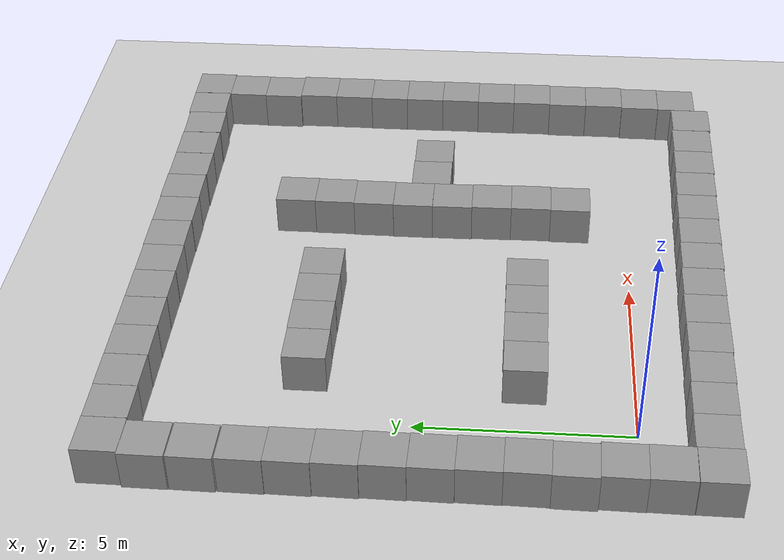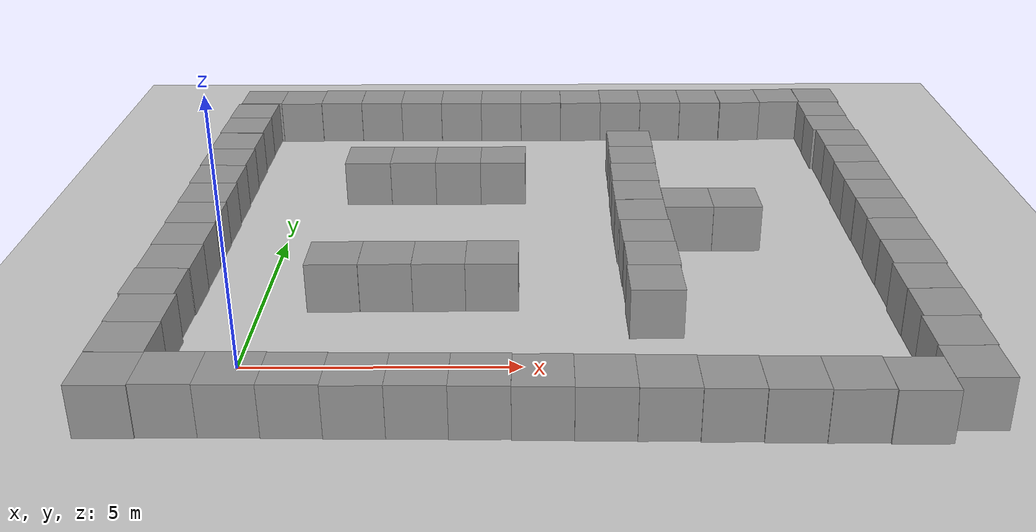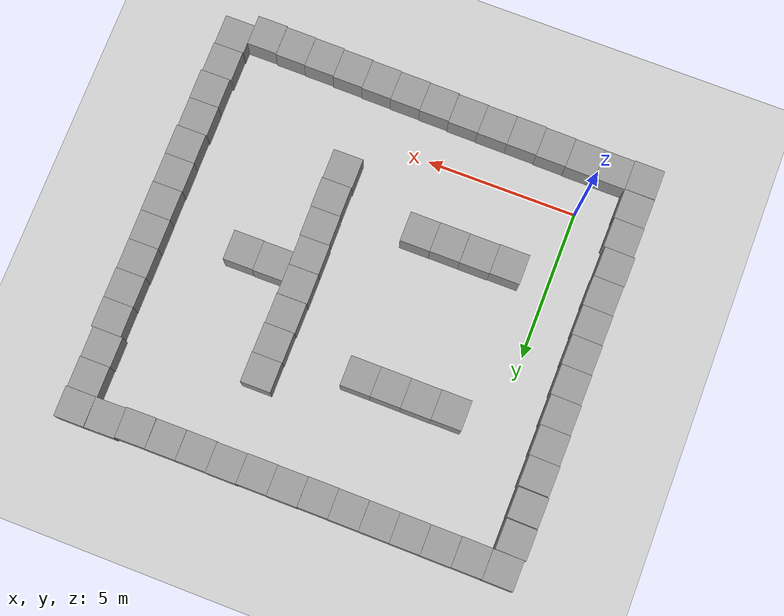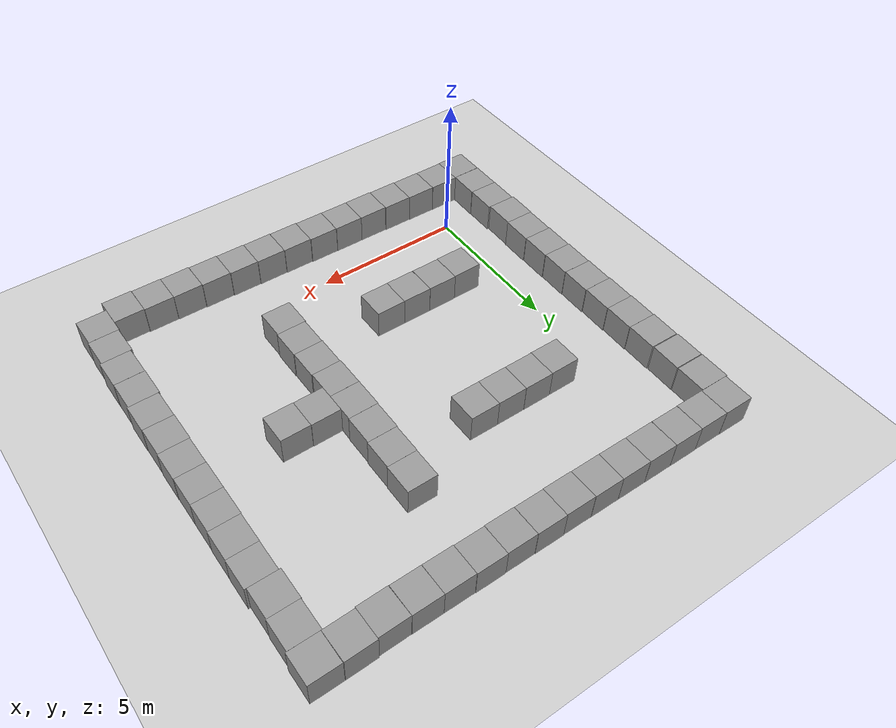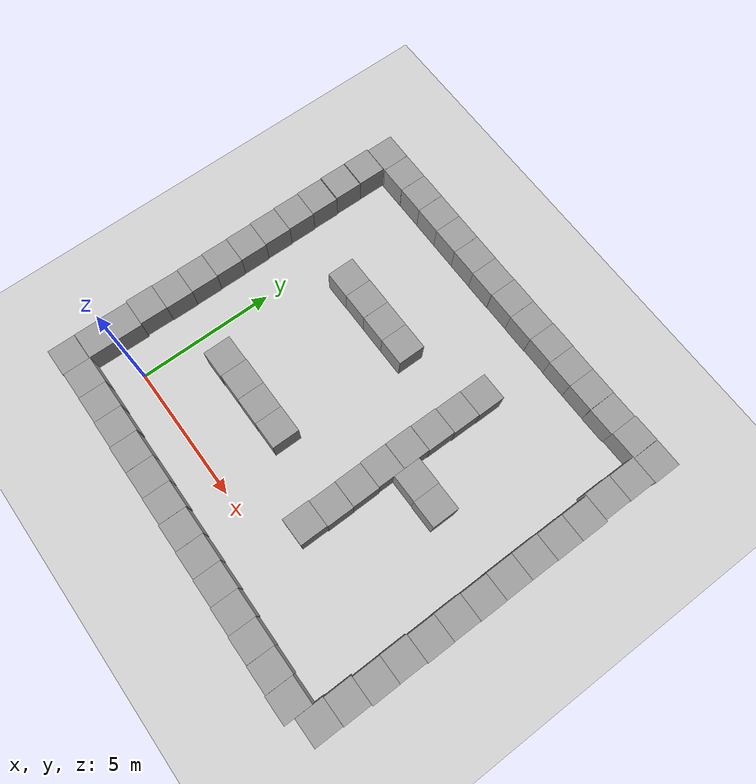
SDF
<sdf version="1.6">
 <world name="default">
  <light name="sun" type="directional">
   <pose>0 0 10 0 -0 0</pose>
   <diffuse>0.8 0.8 0.8 1</diffuse>
   <specular>0.1 0.1 0.1 1</specular>
   <attenuation>
    <range>1000</range>
    <constant>0.9</constant>
    <linear>0.01</linear>
    <quadratic>0.001</quadratic>
   </attenuation>
   <direction>-0.5 0.5 -1</direction>
  </light>
  <model name="ground_plane">
   <static>1</static>
   <link name="link">
    <collision name="collision">
     <geometry><plane><normal>0 0 1</normal><size>100 100</size></plane></geometry>
     <surface><friction><ode><mu>100</mu><mu2>50</mu2></ode></friction></surface>
    </collision>
    <visual name="visual">
     <cast_shadows>0</cast_shadows>
     <geometry><plane><normal>0 0 1</normal><size>100 100</size></plane></geometry>
     <material>
      <script><uri>file://media/materials/scripts/gazebo.material</uri><name>Gazebo/Grey</name></script>
     </material>
    </visual>
   </link>
  </model>
  <gravity>0 0 -9.8</gravity>
  <magnetic_field>6e-06 2.3e-05 -4.2e-05</magnetic_field>
  <atmosphere type="adiabatic"/>
  <physics name="default_physics" default="0" type="ode">
   <max_step_size>0.001</max_step_size>
   <real_time_factor>1</real_time_factor>
   <real_time_update_rate>1000</real_time_update_rate>
  </physics>
  <scene><ambient>0.4 0.4 0.4 1</ambient><background>0.7 0.7 0.7 1</background><shadows>1</shadows></scene>
  <spherical_coordinates>
   <surface_model>EARTH_WGS84</surface_model>
   <latitude_deg>0</latitude_deg>
   <longitude_deg>0</longitude_deg>
   <elevation>0</elevation>
   <heading_deg>0</heading_deg>
  </spherical_coordinates>
  <model name="unit_box_0">
   <pose>-1.68375 -1.59524 0.499995 0 1e-05 -0.007147</pose>
   <link name="link">
    <inertial>
     <mass>1</mass>
     <inertia>
      <ixx>0.166667</ixx>
      <ixy>0</ixy>
      <ixz>0</ixz>
      <iyy>0.166667</iyy>
      <iyz>0</iyz>
      <izz>0.166667</izz>
     </inertia>
    </inertial>
    <collision name="collision"><geometry><box><size>1 1 1</size></box></geometry></collision>
    <visual name="visual">
     <geometry><box><size>1 1 1</size></box></geometry>
     <material>
      <script><name>Gazebo/Grey</name><uri>file://media/materials/scripts/gazebo.material</uri></script>
     </material>
    </visual>
   </link>
  </model>
  <model name="unit_box_1">
   <pose>-1.67736 -0.589115 0.499995 -1e-05 -0 -0.019027</pose>
   <link name="link">
    <inertial>
     <mass>1</mass>
     <inertia>
      <ixx>0.166667</ixx>
      <ixy>0</ixy>
      <ixz>0</ixz>
      <iyy>0.166667</iyy>
      <iyz>0</iyz>
      <izz>0.166667</izz>
     </inertia>
    </inertial>
    <collision name="collision"><geometry><box><size>1 1 1</size></box></geometry></collision>
    <visual name="visual">
     <geometry><box><size>1 1 1</size></box></geometry>
     <material>
      <script><name>Gazebo/Grey</name><uri>file://media/materials/scripts/gazebo.material</uri></script>
     </material>
    </visual>
   </link>
  </model>
  <model name="unit_box_2">
   <pose>-1.67159 0.410975 0.499995 1e-05 -0 -0.019004</pose>
   <link name="link">
    <inertial>
     <mass>1</mass>
     <inertia>
      <ixx>0.166667</ixx>
      <ixy>0</ixy>
      <ixz>0</ixz>
      <iyy>0.166667</iyy>
      <iyz>0</iyz>
      <izz>0.166667</izz>
     </inertia>
    </inertial>
    <collision name="collision"><geometry><box><size>1 1 1</size></box></geometry></collision>
    <visual name="visual">
     <geometry><box><size>1 1 1</size></box></geometry>
     <material>
      <script><name>Gazebo/Grey</name><uri>file://media/materials/scripts/gazebo.material</uri></script>
     </material>
    </visual>
   </link>
  </model>
  <model name="unit_box_3">
   <pose>-1.70645 1.41183 0.499995 0 1e-05 -0.018998</pose>
   <link name="link">
    <inertial>
     <mass>1</mass>
     <inertia>
      <ixx>0.166667</ixx>
      <ixy>0</ixy>
      <ixz>0</ixz>
      <iyy>0.166667</iyy>
      <iyz>0</iyz>
      <izz>0.166667</izz>
     </inertia>
    </inertial>
    <collision name="collision"><geometry><box><size>1 1 1</size></box></geometry></collision>
    <visual name="visual">
     <geometry><box><size>1 1 1</size></box></geometry>
     <material>
      <script><name>Gazebo/Grey</name><uri>file://media/materials/scripts/gazebo.material</uri></script>
     </material>
    </visual>
   </link>
  </model>
  <model name="unit_box_4">
   <pose>-1.67129 2.41135 0.499995 0 -1e-05 -0.018991</pose>
   <link name="link">
    <inertial>
     <mass>1</mass>
     <inertia>
      <ixx>0.166667</ixx>
      <ixy>0</ixy>
      <ixz>0</ixz>
      <iyy>0.166667</iyy>
      <iyz>0</iyz>
      <izz>0.166667</izz>
     </inertia>
    </inertial>
    <collision name="collision"><geometry><box><size>1 1 1</size></box></geometry></collision>
    <visual name="visual">
     <geometry><box><size>1 1 1</size></box></geometry>
     <material>
      <script><name>Gazebo/Grey</name><uri>file://media/materials/scripts/gazebo.material</uri></script>
     </material>
    </visual>
   </link>
  </model>
  <model name="unit_box_5">
   <pose>-1.66735 3.41147 0.5 0 0 -0.018966</pose>
   <link name="link">
    <inertial>
     <mass>1</mass>
     <inertia>
      <ixx>0.166667</ixx>
      <ixy>0</ixy>
      <ixz>0</ixz>
      <iyy>0.166667</iyy>
      <iyz>0</iyz>
      <izz>0.166667</izz>
     </inertia>
    </inertial>
    <collision name="collision"><geometry><box><size>1 1 1</size></box></geometry></collision>
    <visual name="visual">
     <geometry><box><size>1 1 1</size></box></geometry>
     <material>
      <script><name>Gazebo/Grey</name><uri>file://media/materials/scripts/gazebo.material</uri></script>
     </material>
    </visual>
   </link>
  </model>
  <model name="unit_box_6">
   <pose>-1.66822 4.4119 0.499995 0 1e-05 -0.018495</pose>
   <link name="link">
    <inertial>
     <mass>1</mass>
     <inertia>
      <ixx>0.166667</ixx>
      <ixy>0</ixy>
      <ixz>0</ixz>
      <iyy>0.166667</iyy>
      <iyz>0</iyz>
      <izz>0.166667</izz>
     </inertia>
    </inertial>
    <collision name="collision"><geometry><box><size>1 1 1</size></box></geometry></collision>
    <visual name="visual">
     <geometry><box><size>1 1 1</size></box></geometry>
     <material>
      <script><name>Gazebo/Grey</name><uri>file://media/materials/scripts/gazebo.material</uri></script>
     </material>
    </visual>
   </link>
  </model>
  <model name="unit_box_7">
   <pose>-1.6659 5.41211 0.5 0 0 -0.018325</pose>
   <link name="link">
    <inertial>
     <mass>1</mass>
     <inertia>
      <ixx>0.166667</ixx>
      <ixy>0</ixy>
      <ixz>0</ixz>
      <iyy>0.166667</iyy>
      <iyz>0</iyz>
      <izz>0.166667</izz>
     </inertia>
    </inertial>
    <collision name="collision"><geometry><box><size>1 1 1</size></box></geometry></collision>
    <visual name="visual">
     <geometry><box><size>1 1 1</size></box></geometry>
     <material>
      <script><name>Gazebo/Grey</name><uri>file://media/materials/scripts/gazebo.material</uri></script>
     </material>
    </visual>
   </link>
  </model>
  <model name="unit_box_8">
   <pose>-1.67338 6.41265 0.5 0 0 -0.01784</pose>
   <link name="link">
    <inertial>
     <mass>1</mass>
     <inertia>
      <ixx>0.166667</ixx>
      <ixy>0</ixy>
      <ixz>0</ixz>
      <iyy>0.166667</iyy>
      <iyz>0</iyz>
      <izz>0.166667</izz>
     </inertia>
    </inertial>
    <collision name="collision"><geometry><box><size>1 1 1</size></box></geometry></collision>
    <visual name="visual">
     <geometry><box><size>1 1 1</size></box></geometry>
     <material>
      <script><name>Gazebo/Grey</name><uri>file://media/materials/scripts/gazebo.material</uri></script>
     </material>
    </visual>
   </link>
  </model>
  <model name="unit_box_9">
   <pose>-0.683601 -1.58027 0.499995 1e-05 -0 -0.007103</pose>
   <link name="link">
    <inertial>
     <mass>1</mass>
     <inertia>
      <ixx>0.166667</ixx>
      <ixy>0</ixy>
      <ixz>0</ixz>
      <iyy>0.166667</iyy>
      <iyz>0</iyz>
      <izz>0.166667</izz>
     </inertia>
    </inertial>
    <collision name="collision"><geometry><box><size>1 1 1</size></box></geometry></collision>
    <visual name="visual">
     <geometry><box><size>1 1 1</size></box></geometry>
     <material>
      <script><name>Gazebo/Grey</name><uri>file://media/materials/scripts/gazebo.material</uri></script>
     </material>
    </visual>
   </link>
  </model>
  <model name="unit_box_10">
   <pose>0.316469 -1.59661 0.5 0 0 -0.006783</pose>
   <link name="link">
    <inertial>
     <mass>1</mass>
     <inertia>
      <ixx>0.166667</ixx>
      <ixy>0</ixy>
      <ixz>0</ixz>
      <iyy>0.166667</iyy>
      <iyz>0</iyz>
      <izz>0.166667</izz>
     </inertia>
    </inertial>
    <collision name="collision"><geometry><box><size>1 1 1</size></box></geometry></collision>
    <visual name="visual">
     <geometry><box><size>1 1 1</size></box></geometry>
     <material>
      <script><name>Gazebo/Grey</name><uri>file://media/materials/scripts/gazebo.material</uri></script>
     </material>
    </visual>
   </link>
  </model>
  <model name="unit_box_11">
   <pose>1.31637 -1.61834 0.499995 1e-05 -0 -0.006737</pose>
   <link name="link">
    <inertial>
     <mass>1</mass>
     <inertia>
      <ixx>0.166667</ixx>
      <ixy>0</ixy>
      <ixz>0</ixz>
      <iyy>0.166667</iyy>
      <iyz>0</iyz>
      <izz>0.166667</izz>
     </inertia>
    </inertial>
    <collision name="collision"><geometry><box><size>1 1 1</size></box></geometry></collision>
    <visual name="visual">
     <geometry><box><size>1 1 1</size></box></geometry>
     <material>
      <script><name>Gazebo/Grey</name><uri>file://media/materials/scripts/gazebo.material</uri></script>
     </material>
    </visual>
   </link>
  </model>
  <model name="unit_box_12">
   <pose>2.31622 -1.64731 0.499995 1e-05 -0 -0.006688</pose>
   <link name="link">
    <inertial>
     <mass>1</mass>
     <inertia>
      <ixx>0.166667</ixx>
      <ixy>0</ixy>
      <ixz>0</ixz>
      <iyy>0.166667</iyy>
      <iyz>0</iyz>
      <izz>0.166667</izz>
     </inertia>
    </inertial>
    <collision name="collision"><geometry><box><size>1 1 1</size></box></geometry></collision>
    <visual name="visual">
     <geometry><box><size>1 1 1</size></box></geometry>
     <material>
      <script><name>Gazebo/Grey</name><uri>file://media/materials/scripts/gazebo.material</uri></script>
     </material>
    </visual>
   </link>
  </model>
  <model name="unit_box_13">
   <pose>3.31642 -1.65478 0.499995 1e-05 -0 -0.00625</pose>
   <link name="link">
    <inertial>
     <mass>1</mass>
     <inertia>
      <ixx>0.166667</ixx>
      <ixy>0</ixy>
      <ixz>0</ixz>
      <iyy>0.166667</iyy>
      <iyz>0</iyz>
      <izz>0.166667</izz>
     </inertia>
    </inertial>
    <collision name="collision"><geometry><box><size>1 1 1</size></box></geometry></collision>
    <visual name="visual">
     <geometry><box><size>1 1 1</size></box></geometry>
     <material>
      <script><name>Gazebo/Grey</name><uri>file://media/materials/scripts/gazebo.material</uri></script>
     </material>
    </visual>
   </link>
  </model>
  <model name="unit_box_14">
   <pose>4.31643 -1.67336 0.5 0 0 -0.006043</pose>
   <link name="link">
    <inertial>
     <mass>1</mass>
     <inertia>
      <ixx>0.166667</ixx>
      <ixy>0</ixy>
      <ixz>0</ixz>
      <iyy>0.166667</iyy>
      <iyz>0</iyz>
      <izz>0.166667</izz>
     </inertia>
    </inertial>
    <collision name="collision"><geometry><box><size>1 1 1</size></box></geometry></collision>
    <visual name="visual">
     <geometry><box><size>1 1 1</size></box></geometry>
     <material>
      <script><name>Gazebo/Grey</name><uri>file://media/materials/scripts/gazebo.material</uri></script>
     </material>
    </visual>
   </link>
  </model>
  <model name="unit_box_15">
   <pose>5.31675 -1.70642 0.499997 -7e-06 -0 -0.005042</pose>
   <link name="link">
    <inertial>
     <mass>1</mass>
     <inertia>
      <ixx>0.166667</ixx>
      <ixy>0</ixy>
      <ixz>0</ixz>
      <iyy>0.166667</iyy>
      <iyz>0</iyz>
      <izz>0.166667</izz>
     </inertia>
    </inertial>
    <collision name="collision"><geometry><box><size>1 1 1</size></box></geometry></collision>
    <visual name="visual">
     <geometry><box><size>1 1 1</size></box></geometry>
     <material>
      <script><name>Gazebo/Grey</name><uri>file://media/materials/scripts/gazebo.material</uri></script>
     </material>
    </visual>
   </link>
  </model>
  <model name="unit_box_16">
   <pose>-1.67686 7.41288 0.5 0 0 -0.017825</pose>
   <link name="link">
    <inertial>
     <mass>1</mass>
     <inertia>
      <ixx>0.166667</ixx>
      <ixy>0</ixy>
      <ixz>0</ixz>
      <iyy>0.166667</iyy>
      <iyz>0</iyz>
      <izz>0.166667</izz>
     </inertia>
    </inertial>
    <collision name="collision"><geometry><box><size>1 1 1</size></box></geometry></collision>
    <visual name="visual">
     <geometry><box><size>1 1 1</size></box></geometry>
     <material>
      <script><name>Gazebo/Grey</name><uri>file://media/materials/scripts/gazebo.material</uri></script>
     </material>
    </visual>
   </link>
  </model>
  <model name="unit_box_17">
   <pose>-1.67971 8.41309 0.499995 -0 1e-05 -0.017822</pose>
   <link name="link">
    <inertial>
     <mass>1</mass>
     <inertia>
      <ixx>0.166667</ixx>
      <ixy>0</ixy>
      <ixz>0</ixz>
      <iyy>0.166667</iyy>
      <iyz>0</iyz>
      <izz>0.166667</izz>
     </inertia>
    </inertial>
    <collision name="collision"><geometry><box><size>1 1 1</size></box></geometry></collision>
    <visual name="visual">
     <geometry><box><size>1 1 1</size></box></geometry>
     <material>
      <script><name>Gazebo/Grey</name><uri>file://media/materials/scripts/gazebo.material</uri></script>
     </material>
    </visual>
   </link>
  </model>
  <model name="unit_box_18">
   <pose>-1.68512 9.43967 0.499995 0 -1e-05 -0.017333</pose>
   <link name="link">
    <inertial>
     <mass>1</mass>
     <inertia>
      <ixx>0.166667</ixx>
      <ixy>0</ixy>
      <ixz>0</ixz>
      <iyy>0.166667</iyy>
      <iyz>0</iyz>
      <izz>0.166667</izz>
     </inertia>
    </inertial>
    <collision name="collision"><geometry><box><size>1 1 1</size></box></geometry></collision>
    <visual name="visual">
     <geometry><box><size>1 1 1</size></box></geometry>
     <material>
      <script><name>Gazebo/Grey</name><uri>file://media/materials/scripts/gazebo.material</uri></script>
     </material>
    </visual>
   </link>
  </model>
  <model name="unit_box_19">
   <pose>6.31709 -1.72739 0.5 0 0 -0.004168</pose>
   <link name="link">
    <inertial>
     <mass>1</mass>
     <inertia>
      <ixx>0.166667</ixx>
      <ixy>0</ixy>
      <ixz>0</ixz>
      <iyy>0.166667</iyy>
      <iyz>0</iyz>
      <izz>0.166667</izz>
     </inertia>
    </inertial>
    <collision name="collision"><geometry><box><size>1 1 1</size></box></geometry></collision>
    <visual name="visual">
     <geometry><box><size>1 1 1</size></box></geometry>
     <material>
      <script><name>Gazebo/Grey</name><uri>file://media/materials/scripts/gazebo.material</uri></script>
     </material>
    </visual>
   </link>
  </model>
  <model name="unit_box_20">
   <pose>7.31703 -1.74827 0.499997 5e-06 -0 -0.004125</pose>
   <link name="link">
    <inertial>
     <mass>1</mass>
     <inertia>
      <ixx>0.166667</ixx>
      <ixy>0</ixy>
      <ixz>0</ixz>
      <iyy>0.166667</iyy>
      <iyz>0</iyz>
      <izz>0.166667</izz>
     </inertia>
    </inertial>
    <collision name="collision"><geometry><box><size>1 1 1</size></box></geometry></collision>
    <visual name="visual">
     <geometry><box><size>1 1 1</size></box></geometry>
     <material>
      <script><name>Gazebo/Grey</name><uri>file://media/materials/scripts/gazebo.material</uri></script>
     </material>
    </visual>
   </link>
  </model>
  <model name="unit_box_21">
   <pose>8.31695 -1.77576 0.499995 0 -1e-05 -0.004081</pose>
   <link name="link">
    <inertial>
     <mass>1</mass>
     <inertia>
      <ixx>0.166667</ixx>
      <ixy>0</ixy>
      <ixz>0</ixz>
      <iyy>0.166667</iyy>
      <iyz>0</iyz>
      <izz>0.166667</izz>
     </inertia>
    </inertial>
    <collision name="collision"><geometry><box><size>1 1 1</size></box></geometry></collision>
    <visual name="visual">
     <geometry><box><size>1 1 1</size></box></geometry>
     <material>
      <script><name>Gazebo/Grey</name><uri>file://media/materials/scripts/gazebo.material</uri></script>
     </material>
    </visual>
   </link>
  </model>
  <model name="unit_box_22">
   <pose>9.3173 -1.80614 0.5 0 0 -0.003165</pose>
   <link name="link">
    <inertial>
     <mass>1</mass>
     <inertia>
      <ixx>0.166667</ixx>
      <ixy>0</ixy>
      <ixz>0</ixz>
      <iyy>0.166667</iyy>
      <iyz>0</iyz>
      <izz>0.166667</izz>
     </inertia>
    </inertial>
    <collision name="collision"><geometry><box><size>1 1 1</size></box></geometry></collision>
    <visual name="visual">
     <geometry><box><size>1 1 1</size></box></geometry>
     <material>
      <script><name>Gazebo/Grey</name><uri>file://media/materials/scripts/gazebo.material</uri></script>
     </material>
    </visual>
   </link>
  </model>
  <model name="unit_box_23">
   <pose>10.3174 -1.82466 0.499998 5e-06 -1e-06 -0.002842</pose>
   <link name="link">
    <inertial>
     <mass>1</mass>
     <inertia>
      <ixx>0.166667</ixx>
      <ixy>0</ixy>
      <ixz>0</ixz>
      <iyy>0.166667</iyy>
      <iyz>0</iyz>
      <izz>0.166667</izz>
     </inertia>
    </inertial>
    <collision name="collision"><geometry><box><size>1 1 1</size></box></geometry></collision>
    <visual name="visual">
     <geometry><box><size>1 1 1</size></box></geometry>
     <material>
      <script><name>Gazebo/Grey</name><uri>file://media/materials/scripts/gazebo.material</uri></script>
     </material>
    </visual>
   </link>
  </model>
  <model name="unit_box_24">
   <pose>11.3188 -1.85667 0.5 7e-06 0 0.000162</pose>
   <link name="link">
    <inertial>
     <mass>1</mass>
     <inertia>
      <ixx>0.166667</ixx>
      <ixy>0</ixy>
      <ixz>0</ixz>
      <iyy>0.166667</iyy>
      <iyz>0</iyz>
      <izz>0.166667</izz>
     </inertia>
    </inertial>
    <collision name="collision"><geometry><box><size>1 1 1</size></box></geometry></collision>
    <visual name="visual">
     <geometry><box><size>1 1 1</size></box></geometry>
     <material>
      <script><name>Gazebo/Grey</name><uri>file://media/materials/scripts/gazebo.material</uri></script>
     </material>
    </visual>
   </link>
  </model>
  <model name="unit_box_25">
   <pose>-1.67848 10.4631 0.499995 0 -1e-05 -0.014011</pose>
   <link name="link">
    <inertial>
     <mass>1</mass>
     <inertia>
      <ixx>0.166667</ixx>
      <ixy>0</ixy>
      <ixz>0</ixz>
      <iyy>0.166667</iyy>
      <iyz>0</iyz>
      <izz>0.166667</izz>
     </inertia>
    </inertial>
    <collision name="collision"><geometry><box><size>1 1 1</size></box></geometry></collision>
    <visual name="visual">
     <geometry><box><size>1 1 1</size></box></geometry>
     <material>
      <script><name>Gazebo/Grey</name><uri>file://media/materials/scripts/gazebo.material</uri></script>
     </material>
    </visual>
   </link>
  </model>
  <model name="unit_box_26">
   <pose>-1.61379 11.4669 0.5 0 0 -0.008012</pose>
   <link name="link">
    <inertial>
     <mass>1</mass>
     <inertia>
      <ixx>0.166667</ixx>
      <ixy>0</ixy>
      <ixz>0</ixz>
      <iyy>0.166667</iyy>
      <iyz>0</iyz>
      <izz>0.166667</izz>
     </inertia>
    </inertial>
    <collision name="collision"><geometry><box><size>1 1 1</size></box></geometry></collision>
    <visual name="visual">
     <geometry><box><size>1 1 1</size></box></geometry>
     <material>
      <script><name>Gazebo/Grey</name><uri>file://media/materials/scripts/gazebo.material</uri></script>
     </material>
    </visual>
   </link>
  </model>
  <model name="unit_box_27">
   <pose>-0.61278 11.4551 0.499995 0 -1e-05 -0.005864</pose>
   <link name="link">
    <inertial>
     <mass>1</mass>
     <inertia>
      <ixx>0.166667</ixx>
      <ixy>0</ixy>
      <ixz>0</ixz>
      <iyy>0.166667</iyy>
      <iyz>0</iyz>
      <izz>0.166667</izz>
     </inertia>
    </inertial>
    <collision name="collision"><geometry><box><size>1 1 1</size></box></geometry></collision>
    <visual name="visual">
     <geometry><box><size>1 1 1</size></box></geometry>
     <material>
      <script><name>Gazebo/Grey</name><uri>file://media/materials/scripts/gazebo.material</uri></script>
     </material>
    </visual>
   </link>
  </model>
  <model name="unit_box_28">
   <pose>0.388078 11.4568 0.499995 -0 1e-05 -0.004209</pose>
   <link name="link">
    <inertial>
     <mass>1</mass>
     <inertia>
      <ixx>0.166667</ixx>
      <ixy>0</ixy>
      <ixz>0</ixz>
      <iyy>0.166667</iyy>
      <iyz>0</iyz>
      <izz>0.166667</izz>
     </inertia>
    </inertial>
    <collision name="collision"><geometry><box><size>1 1 1</size></box></geometry></collision>
    <visual name="visual">
     <geometry><box><size>1 1 1</size></box></geometry>
     <material>
      <script><name>Gazebo/Grey</name><uri>file://media/materials/scripts/gazebo.material</uri></script>
     </material>
    </visual>
   </link>
  </model>
  <model name="unit_box_29">
   <pose>1.38925 11.4509 0.499995 0 -1e-05 -0.001812</pose>
   <link name="link">
    <inertial>
     <mass>1</mass>
     <inertia>
      <ixx>0.166667</ixx>
      <ixy>0</ixy>
      <ixz>0</ixz>
      <iyy>0.166667</iyy>
      <iyz>0</iyz>
      <izz>0.166667</izz>
     </inertia>
    </inertial>
    <collision name="collision"><geometry><box><size>1 1 1</size></box></geometry></collision>
    <visual name="visual">
     <geometry><box><size>1 1 1</size></box></geometry>
     <material>
      <script><name>Gazebo/Grey</name><uri>file://media/materials/scripts/gazebo.material</uri></script>
     </material>
    </visual>
   </link>
  </model>
  <model name="unit_box_30">
   <pose>2.38932 11.4454 0.499995 -1e-05 0 -0.001668</pose>
   <link name="link">
    <inertial>
     <mass>1</mass>
     <inertia>
      <ixx>0.166667</ixx>
      <ixy>0</ixy>
      <ixz>0</ixz>
      <iyy>0.166667</iyy>
      <iyz>0</iyz>
      <izz>0.166667</izz>
     </inertia>
    </inertial>
    <collision name="collision"><geometry><box><size>1 1 1</size></box></geometry></collision>
    <visual name="visual">
     <geometry><box><size>1 1 1</size></box></geometry>
     <material>
      <script><name>Gazebo/Grey</name><uri>file://media/materials/scripts/gazebo.material</uri></script>
     </material>
    </visual>
   </link>
  </model>
  <model name="unit_box_31">
   <pose>3.3902 11.442 0.5 0 -0 9.9e-05</pose>
   <link name="link">
    <inertial>
     <mass>1</mass>
     <inertia>
      <ixx>0.166667</ixx>
      <ixy>0</ixy>
      <ixz>0</ixz>
      <iyy>0.166667</iyy>
      <iyz>0</iyz>
      <izz>0.166667</izz>
     </inertia>
    </inertial>
    <collision name="collision"><geometry><box><size>1 1 1</size></box></geometry></collision>
    <visual name="visual">
     <geometry><box><size>1 1 1</size></box></geometry>
     <material>
      <script><name>Gazebo/Grey</name><uri>file://media/materials/scripts/gazebo.material</uri></script>
     </material>
    </visual>
   </link>
  </model>
  <model name="unit_box_32">
   <pose>4.39038 11.4356 0.499995 0 -1e-05 0.000463</pose>
   <link name="link">
    <inertial>
     <mass>1</mass>
     <inertia>
      <ixx>0.166667</ixx>
      <ixy>0</ixy>
      <ixz>0</ixz>
      <iyy>0.166667</iyy>
      <iyz>0</iyz>
      <izz>0.166667</izz>
     </inertia>
    </inertial>
    <collision name="collision"><geometry><box><size>1 1 1</size></box></geometry></collision>
    <visual name="visual">
     <geometry><box><size>1 1 1</size></box></geometry>
     <material>
      <script><name>Gazebo/Grey</name><uri>file://media/materials/scripts/gazebo.material</uri></script>
     </material>
    </visual>
   </link>
  </model>
  <model name="unit_box_33">
   <pose>5.39055 11.4466 0.5 0 -0 0.000798</pose>
   <link name="link">
    <inertial>
     <mass>1</mass>
     <inertia>
      <ixx>0.166667</ixx>
      <ixy>0</ixy>
      <ixz>0</ixz>
      <iyy>0.166667</iyy>
      <iyz>0</iyz>
      <izz>0.166667</izz>
     </inertia>
    </inertial>
    <collision name="collision"><geometry><box><size>1 1 1</size></box></geometry></collision>
    <visual name="visual">
     <geometry><box><size>1 1 1</size></box></geometry>
     <material>
      <script><name>Gazebo/Grey</name><uri>file://media/materials/scripts/gazebo.material</uri></script>
     </material>
    </visual>
   </link>
  </model>
  <model name="unit_box_34">
   <pose>6.39101 11.4411 0.5 0 -0 0.001719</pose>
   <link name="link">
    <inertial>
     <mass>1</mass>
     <inertia>
      <ixx>0.166667</ixx>
      <ixy>0</ixy>
      <ixz>0</ixz>
      <iyy>0.166667</iyy>
      <iyz>0</iyz>
      <izz>0.166667</izz>
     </inertia>
    </inertial>
    <collision name="collision"><geometry><box><size>1 1 1</size></box></geometry></collision>
    <visual name="visual">
     <geometry><box><size>1 1 1</size></box></geometry>
     <material>
      <script><name>Gazebo/Grey</name><uri>file://media/materials/scripts/gazebo.material</uri></script>
     </material>
    </visual>
   </link>
  </model>
  <model name="unit_box_35">
   <pose>7.39102 11.4553 0.499995 -1e-05 -0 0.001768</pose>
   <link name="link">
    <inertial>
     <mass>1</mass>
     <inertia>
      <ixx>0.166667</ixx>
      <ixy>0</ixy>
      <ixz>0</ixz>
      <iyy>0.166667</iyy>
      <iyz>0</iyz>
      <izz>0.166667</izz>
     </inertia>
    </inertial>
    <collision name="collision"><geometry><box><size>1 1 1</size></box></geometry></collision>
    <visual name="visual">
     <geometry><box><size>1 1 1</size></box></geometry>
     <material>
      <script><name>Gazebo/Grey</name><uri>file://media/materials/scripts/gazebo.material</uri></script>
     </material>
    </visual>
   </link>
  </model>
  <model name="unit_box_36">
   <pose>8.39136 11.445 0.499995 1e-05 -0 0.002418</pose>
   <link name="link">
    <inertial>
     <mass>1</mass>
     <inertia>
      <ixx>0.166667</ixx>
      <ixy>0</ixy>
      <ixz>0</ixz>
      <iyy>0.166667</iyy>
      <iyz>0</iyz>
      <izz>0.166667</izz>
     </inertia>
    </inertial>
    <collision name="collision"><geometry><box><size>1 1 1</size></box></geometry></collision>
    <visual name="visual">
     <geometry><box><size>1 1 1</size></box></geometry>
     <material>
      <script><name>Gazebo/Grey</name><uri>file://media/materials/scripts/gazebo.material</uri></script>
     </material>
    </visual>
   </link>
  </model>
  <model name="unit_box_37">
   <pose>9.39306 11.4476 0.5 0 -0 0.005837</pose>
   <link name="link">
    <inertial>
     <mass>1</mass>
     <inertia>
      <ixx>0.166667</ixx>
      <ixy>0</ixy>
      <ixz>0</ixz>
      <iyy>0.166667</iyy>
      <iyz>0</iyz>
      <izz>0.166667</izz>
     </inertia>
    </inertial>
    <collision name="collision"><geometry><box><size>1 1 1</size></box></geometry></collision>
    <visual name="visual">
     <geometry><box><size>1 1 1</size></box></geometry>
     <material>
      <script><name>Gazebo/Grey</name><uri>file://media/materials/scripts/gazebo.material</uri></script>
     </material>
    </visual>
   </link>
  </model>
  <model name="unit_box_38">
   <pose>12.3192 -1.49687 0.5 1e-06 1e-06 0.003151</pose>
   <link name="link">
    <inertial>
     <mass>1</mass>
     <inertia>
      <ixx>0.166667</ixx>
      <ixy>0</ixy>
      <ixz>0</ixz>
      <iyy>0.166667</iyy>
      <iyz>0</iyz>
      <izz>0.166667</izz>
     </inertia>
    </inertial>
    <collision name="collision"><geometry><box><size>1 1 1</size></box></geometry></collision>
    <visual name="visual">
     <geometry><box><size>1 1 1</size></box></geometry>
     <material>
      <script><name>Gazebo/Grey</name><uri>file://media/materials/scripts/gazebo.material</uri></script>
     </material>
    </visual>
   </link>
  </model>
  <model name="unit_box_45">
   <pose>10.398 11.4494 0.5 0 -0 0.015661</pose>
   <link name="link">
    <inertial>
     <mass>1</mass>
     <inertia>
      <ixx>0.166667</ixx>
      <ixy>0</ixy>
      <ixz>0</ixz>
      <iyy>0.166667</iyy>
      <iyz>0</iyz>
      <izz>0.166667</izz>
     </inertia>
    </inertial>
    <collision name="collision"><geometry><box><size>1 1 1</size></box></geometry></collision>
    <visual name="visual">
     <geometry><box><size>1 1 1</size></box></geometry>
     <material>
      <script><name>Gazebo/Grey</name><uri>file://media/materials/scripts/gazebo.material</uri></script>
     </material>
    </visual>
   </link>
  </model>
  <model name="unit_box_46">
   <pose>11.3974 11.4961 0.499995 -0 -1e-05 0.015667</pose>
   <link name="link">
    <inertial>
     <mass>1</mass>
     <inertia>
      <ixx>0.166667</ixx>
      <ixy>0</ixy>
      <ixz>0</ixz>
      <iyy>0.166667</iyy>
      <iyz>0</iyz>
      <izz>0.166667</izz>
     </inertia>
    </inertial>
    <collision name="collision"><geometry><box><size>1 1 1</size></box></geometry></collision>
    <visual name="visual">
     <geometry><box><size>1 1 1</size></box></geometry>
     <material>
      <script><name>Gazebo/Grey</name><uri>file://media/materials/scripts/gazebo.material</uri></script>
     </material>
    </visual>
   </link>
  </model>
  <model name="unit_box_47">
   <pose>12.4034 11.5051 0.5 0 -0 0.003386</pose>
   <link name="link">
    <inertial>
     <mass>1</mass>
     <inertia>
      <ixx>0.166667</ixx>
      <ixy>0</ixy>
      <ixz>0</ixz>
      <iyy>0.166667</iyy>
      <iyz>0</iyz>
      <izz>0.166667</izz>
     </inertia>
    </inertial>
    <collision name="collision"><geometry><box><size>1 1 1</size></box></geometry></collision>
    <visual name="visual">
     <geometry><box><size>1 1 1</size></box></geometry>
     <material>
      <script><name>Gazebo/Grey</name><uri>file://media/materials/scripts/gazebo.material</uri></script>
     </material>
    </visual>
   </link>
  </model>
  <model name="unit_box_48">
   <pose>12.3638 10.5044 0.499995 0 1e-05 0.002142</pose>
   <link name="link">
    <inertial>
     <mass>1</mass>
     <inertia>
      <ixx>0.166667</ixx>
      <ixy>0</ixy>
      <ixz>0</ixz>
      <iyy>0.166667</iyy>
      <iyz>0</iyz>
      <izz>0.166667</izz>
     </inertia>
    </inertial>
    <collision name="collision"><geometry><box><size>1 1 1</size></box></geometry></collision>
    <visual name="visual">
     <geometry><box><size>1 1 1</size></box></geometry>
     <material>
      <script><name>Gazebo/Grey</name><uri>file://media/materials/scripts/gazebo.material</uri></script>
     </material>
    </visual>
   </link>
  </model>
  <model name="unit_box_49">
   <pose>12.3502 9.50436 0.499995 0 -1e-05 0.002142</pose>
   <link name="link">
    <inertial>
     <mass>1</mass>
     <inertia>
      <ixx>0.166667</ixx>
      <ixy>0</ixy>
      <ixz>0</ixz>
      <iyy>0.166667</iyy>
      <iyz>0</iyz>
      <izz>0.166667</izz>
     </inertia>
    </inertial>
    <collision name="collision"><geometry><box><size>1 1 1</size></box></geometry></collision>
    <visual name="visual">
     <geometry><box><size>1 1 1</size></box></geometry>
     <material>
      <script><name>Gazebo/Grey</name><uri>file://media/materials/scripts/gazebo.material</uri></script>
     </material>
    </visual>
   </link>
  </model>
  <model name="unit_box_50">
   <pose>12.4149 8.50449 0.5 0 -0 0.002145</pose>
   <link name="link">
    <inertial>
     <mass>1</mass>
     <inertia>
      <ixx>0.166667</ixx>
      <ixy>0</ixy>
      <ixz>0</ixz>
      <iyy>0.166667</iyy>
      <iyz>0</iyz>
      <izz>0.166667</izz>
     </inertia>
    </inertial>
    <collision name="collision"><geometry><box><size>1 1 1</size></box></geometry></collision>
    <visual name="visual">
     <geometry><box><size>1 1 1</size></box></geometry>
     <material>
      <script><name>Gazebo/Grey</name><uri>file://media/materials/scripts/gazebo.material</uri></script>
     </material>
    </visual>
   </link>
  </model>
  <model name="unit_box_51">
   <pose>12.41 7.50448 0.499995 0 1e-05 0.002145</pose>
   <link name="link">
    <inertial>
     <mass>1</mass>
     <inertia>
      <ixx>0.166667</ixx>
      <ixy>0</ixy>
      <ixz>0</ixz>
      <iyy>0.166667</iyy>
      <iyz>0</iyz>
      <izz>0.166667</izz>
     </inertia>
    </inertial>
    <collision name="collision"><geometry><box><size>1 1 1</size></box></geometry></collision>
    <visual name="visual">
     <geometry><box><size>1 1 1</size></box></geometry>
     <material>
      <script><name>Gazebo/Grey</name><uri>file://media/materials/scripts/gazebo.material</uri></script>
     </material>
    </visual>
   </link>
  </model>
  <model name="unit_box_52">
   <pose>12.3979 6.50443 0.5 0 -0 0.002171</pose>
   <link name="link">
    <inertial>
     <mass>1</mass>
     <inertia>
      <ixx>0.166667</ixx>
      <ixy>0</ixy>
      <ixz>0</ixz>
      <iyy>0.166667</iyy>
      <iyz>0</iyz>
      <izz>0.166667</izz>
     </inertia>
    </inertial>
    <collision name="collision"><geometry><box><size>1 1 1</size></box></geometry></collision>
    <visual name="visual">
     <geometry><box><size>1 1 1</size></box></geometry>
     <material>
      <script><name>Gazebo/Grey</name><uri>file://media/materials/scripts/gazebo.material</uri></script>
     </material>
    </visual>
   </link>
  </model>
  <model name="unit_box_53">
   <pose>12.399 5.50443 0.5 0 -0 0.002171</pose>
   <link name="link">
    <inertial>
     <mass>1</mass>
     <inertia>
      <ixx>0.166667</ixx>
      <ixy>0</ixy>
      <ixz>0</ixz>
      <iyy>0.166667</iyy>
      <iyz>0</iyz>
      <izz>0.166667</izz>
     </inertia>
    </inertial>
    <collision name="collision"><geometry><box><size>1 1 1</size></box></geometry></collision>
    <visual name="visual">
     <geometry><box><size>1 1 1</size></box></geometry>
     <material>
      <script><name>Gazebo/Grey</name><uri>file://media/materials/scripts/gazebo.material</uri></script>
     </material>
    </visual>
   </link>
  </model>
  <model name="unit_box_54">
   <pose>12.4079 4.50437 0.5 0 -0 0.002332</pose>
   <link name="link">
    <inertial>
     <mass>1</mass>
     <inertia>
      <ixx>0.166667</ixx>
      <ixy>0</ixy>
      <ixz>0</ixz>
      <iyy>0.166667</iyy>
      <iyz>0</iyz>
      <izz>0.166667</izz>
     </inertia>
    </inertial>
    <collision name="collision"><geometry><box><size>1 1 1</size></box></geometry></collision>
    <visual name="visual">
     <geometry><box><size>1 1 1</size></box></geometry>
     <material>
      <script><name>Gazebo/Grey</name><uri>file://media/materials/scripts/gazebo.material</uri></script>
     </material>
    </visual>
   </link>
  </model>
  <model name="unit_box_39_0">
   <pose>12.3952 3.50432 0.5 0 -0 0.002363</pose>
   <link name="link">
    <inertial>
     <mass>1</mass>
     <inertia>
      <ixx>0.166667</ixx>
      <ixy>0</ixy>
      <ixz>0</ixz>
      <iyy>0.166667</iyy>
      <iyz>0</iyz>
      <izz>0.166667</izz>
     </inertia>
    </inertial>
    <collision name="collision"><geometry><box><size>1 1 1</size></box></geometry></collision>
    <visual name="visual">
     <geometry><box><size>1 1 1</size></box></geometry>
     <material>
      <script><name>Gazebo/Grey</name><uri>file://media/materials/scripts/gazebo.material</uri></script>
     </material>
    </visual>
   </link>
  </model>
  <model name="unit_box_39_1">
   <pose>12.4051 2.50427 0.49999 0 -0 0.002488</pose>
   <link name="link">
    <inertial>
     <mass>1</mass>
     <inertia>
      <ixx>0.166667</ixx>
      <ixy>0</ixy>
      <ixz>0</ixz>
      <iyy>0.166667</iyy>
      <iyz>0</iyz>
      <izz>0.166667</izz>
     </inertia>
    </inertial>
    <collision name="collision"><geometry><box><size>1 1 1</size></box></geometry></collision>
    <visual name="visual">
     <geometry><box><size>1 1 1</size></box></geometry>
     <material>
      <script><name>Gazebo/Grey</name><uri>file://media/materials/scripts/gazebo.material</uri></script>
     </material>
    </visual>
   </link>
  </model>
  <model name="unit_box_39_2">
   <pose>12.3739 1.5041 0.5 0 -0 0.002679</pose>
   <link name="link">
    <inertial>
     <mass>1</mass>
     <inertia>
      <ixx>0.166667</ixx>
      <ixy>0</ixy>
      <ixz>0</ixz>
      <iyy>0.166667</iyy>
      <iyz>0</iyz>
      <izz>0.166667</izz>
     </inertia>
    </inertial>
    <collision name="collision"><geometry><box><size>1 1 1</size></box></geometry></collision>
    <visual name="visual">
     <geometry><box><size>1 1 1</size></box></geometry>
     <material>
      <script><name>Gazebo/Grey</name><uri>file://media/materials/scripts/gazebo.material</uri></script>
     </material>
    </visual>
   </link>
  </model>
  <model name="unit_box_39_3">
   <pose>12.3829 0.503627 0.499985 0 -1e-05 0.003666</pose>
   <link name="link">
    <inertial>
     <mass>1</mass>
     <inertia>
      <ixx>0.166667</ixx>
      <ixy>0</ixy>
      <ixz>0</ixz>
      <iyy>0.166667</iyy>
      <iyz>0</iyz>
      <izz>0.166667</izz>
     </inertia>
    </inertial>
    <collision name="collision"><geometry><box><size>1 1 1</size></box></geometry></collision>
    <visual name="visual">
     <geometry><box><size>1 1 1</size></box></geometry>
     <material>
      <script><name>Gazebo/Grey</name><uri>file://media/materials/scripts/gazebo.material</uri></script>
     </material>
    </visual>
   </link>
  </model>
  <model name="unit_box_39_4">
   <pose>12.3382 -0.496545 0.5 0 -0 0.003668</pose>
   <link name="link">
    <inertial>
     <mass>1</mass>
     <inertia>
      <ixx>0.166667</ixx>
      <ixy>0</ixy>
      <ixz>0</ixz>
      <iyy>0.166667</iyy>
      <iyz>0</iyz>
      <izz>0.166667</izz>
     </inertia>
    </inertial>
    <collision name="collision"><geometry><box><size>1 1 1</size></box></geometry></collision>
    <visual name="visual">
     <geometry><box><size>1 1 1</size></box></geometry>
     <material>
      <script><name>Gazebo/Grey</name><uri>file://media/materials/scripts/gazebo.material</uri></script>
     </material>
    </visual>
   </link>
  </model>
  <model name="unit_box_39_5">
   <pose>1.39583 2.51004 0.499995 -1e-05 0 -0.002533</pose>
   <link name="link">
    <inertial>
     <mass>1</mass>
     <inertia>
      <ixx>0.166667</ixx>
      <ixy>0</ixy>
      <ixz>0</ixz>
      <iyy>0.166667</iyy>
      <iyz>0</iyz>
      <izz>0.166667</izz>
     </inertia>
    </inertial>
    <collision name="collision"><geometry><box><size>1 1 1</size></box></geometry></collision>
    <visual name="visual">
     <geometry><box><size>1 1 1</size></box></geometry>
     <material>
      <script><name>Gazebo/Grey</name><uri>file://media/materials/scripts/gazebo.material</uri></script>
     </material>
    </visual>
   </link>
  </model>
  <model name="unit_box_39_6">
   <pose>2.39621 2.52345 0.499995 0 -1e-05 -0.00213</pose>
   <link name="link">
    <inertial>
     <mass>1</mass>
     <inertia>
      <ixx>0.166667</ixx>
      <ixy>0</ixy>
      <ixz>0</ixz>
      <iyy>0.166667</iyy>
      <iyz>0</iyz>
      <izz>0.166667</izz>
     </inertia>
    </inertial>
    <collision name="collision"><geometry><box><size>1 1 1</size></box></geometry></collision>
    <visual name="visual">
     <geometry><box><size>1 1 1</size></box></geometry>
     <material>
      <script><name>Gazebo/Grey</name><uri>file://media/materials/scripts/gazebo.material</uri></script>
     </material>
    </visual>
   </link>
  </model>
  <model name="unit_box_39_7">
   <pose>3.39694 2.51724 0.499995 0 -1e-05 -0.00188</pose>
   <link name="link">
    <inertial>
     <mass>1</mass>
     <inertia>
      <ixx>0.166667</ixx>
      <ixy>0</ixy>
      <ixz>0</ixz>
      <iyy>0.166667</iyy>
      <iyz>0</iyz>
      <izz>0.166667</izz>
     </inertia>
    </inertial>
    <collision name="collision"><geometry><box><size>1 1 1</size></box></geometry></collision>
    <visual name="visual">
     <geometry><box><size>1 1 1</size></box></geometry>
     <material>
      <script><name>Gazebo/Grey</name><uri>file://media/materials/scripts/gazebo.material</uri></script>
     </material>
    </visual>
   </link>
  </model>
  <model name="unit_box_39_8">
   <pose>4.39699 2.52071 0.499995 1e-05 -0 -0.001905</pose>
   <link name="link">
    <inertial>
     <mass>1</mass>
     <inertia>
      <ixx>0.166667</ixx>
      <ixy>0</ixy>
      <ixz>0</ixz>
      <iyy>0.166667</iyy>
      <iyz>0</iyz>
      <izz>0.166667</izz>
     </inertia>
    </inertial>
    <collision name="collision"><geometry><box><size>1 1 1</size></box></geometry></collision>
    <visual name="visual">
     <geometry><box><size>1 1 1</size></box></geometry>
     <material>
      <script><name>Gazebo/Grey</name><uri>file://media/materials/scripts/gazebo.material</uri></script>
     </material>
    </visual>
   </link>
  </model>
  <model name="unit_box_39_9">
   <pose>7.43387 2.46901 0.499995 0 1e-05 0.004689</pose>
   <link name="link">
    <inertial>
     <mass>1</mass>
     <inertia>
      <ixx>0.166667</ixx>
      <ixy>0</ixy>
      <ixz>0</ixz>
      <iyy>0.166667</iyy>
      <iyz>0</iyz>
      <izz>0.166667</izz>
     </inertia>
    </inertial>
    <collision name="collision"><geometry><box><size>1 1 1</size></box></geometry></collision>
    <visual name="visual">
     <geometry><box><size>1 1 1</size></box></geometry>
     <material>
      <script><name>Gazebo/Grey</name><uri>file://media/materials/scripts/gazebo.material</uri></script>
     </material>
    </visual>
   </link>
  </model>
  <model name="unit_box_39_10">
   <pose>7.41683 3.46936 0.499995 -0 -1e-05 0.005527</pose>
   <link name="link">
    <inertial>
     <mass>1</mass>
     <inertia>
      <ixx>0.166667</ixx>
      <ixy>0</ixy>
      <ixz>0</ixz>
      <iyy>0.166667</iyy>
      <iyz>0</iyz>
      <izz>0.166667</izz>
     </inertia>
    </inertial>
    <collision name="collision"><geometry><box><size>1 1 1</size></box></geometry></collision>
    <visual name="visual">
     <geometry><box><size>1 1 1</size></box></geometry>
     <material>
      <script><name>Gazebo/Grey</name><uri>file://media/materials/scripts/gazebo.material</uri></script>
     </material>
    </visual>
   </link>
  </model>
  <model name="unit_box_39_11">
   <pose>7.38893 4.46926 0.499995 0 -1e-05 0.005596</pose>
   <link name="link">
    <inertial>
     <mass>1</mass>
     <inertia>
      <ixx>0.166667</ixx>
      <ixy>0</ixy>
      <ixz>0</ixz>
      <iyy>0.166667</iyy>
      <iyz>0</iyz>
      <izz>0.166667</izz>
     </inertia>
    </inertial>
    <collision name="collision"><geometry><box><size>1 1 1</size></box></geometry></collision>
    <visual name="visual">
     <geometry><box><size>1 1 1</size></box></geometry>
     <material>
      <script><name>Gazebo/Grey</name><uri>file://media/materials/scripts/gazebo.material</uri></script>
     </material>
    </visual>
   </link>
  </model>
  <model name="unit_box_39_12">
   <pose>7.38333 5.47085 0.499995 0 -1e-05 0.002591</pose>
   <link name="link">
    <inertial>
     <mass>1</mass>
     <inertia>
      <ixx>0.166667</ixx>
      <ixy>0</ixy>
      <ixz>0</ixz>
      <iyy>0.166667</iyy>
      <iyz>0</iyz>
      <izz>0.166667</izz>
     </inertia>
    </inertial>
    <collision name="collision"><geometry><box><size>1 1 1</size></box></geometry></collision>
    <visual name="visual">
     <geometry><box><size>1 1 1</size></box></geometry>
     <material>
      <script><name>Gazebo/Grey</name><uri>file://media/materials/scripts/gazebo.material</uri></script>
     </material>
    </visual>
   </link>
  </model>
  <model name="unit_box_39_13">
   <pose>7.39778 6.47204 0.499995 1e-05 0 0.000284</pose>
   <link name="link">
    <inertial>
     <mass>1</mass>
     <inertia>
      <ixx>0.166667</ixx>
      <ixy>0</ixy>
      <ixz>0</ixz>
      <iyy>0.166667</iyy>
      <iyz>0</iyz>
      <izz>0.166667</izz>
     </inertia>
    </inertial>
    <collision name="collision"><geometry><box><size>1 1 1</size></box></geometry></collision>
    <visual name="visual">
     <geometry><box><size>1 1 1</size></box></geometry>
     <material>
      <script><name>Gazebo/Grey</name><uri>file://media/materials/scripts/gazebo.material</uri></script>
     </material>
    </visual>
   </link>
  </model>
  <model name="unit_box_39_14">
   <pose>7.42006 7.47221 0.499995 1e-05 -0 0.000143</pose>
   <link name="link">
    <inertial>
     <mass>1</mass>
     <inertia>
      <ixx>0.166667</ixx>
      <ixy>0</ixy>
      <ixz>0</ixz>
      <iyy>0.166667</iyy>
      <iyz>0</iyz>
      <izz>0.166667</izz>
     </inertia>
    </inertial>
    <collision name="collision"><geometry><box><size>1 1 1</size></box></geometry></collision>
    <visual name="visual">
     <geometry><box><size>1 1 1</size></box></geometry>
     <material>
      <script><name>Gazebo/Grey</name><uri>file://media/materials/scripts/gazebo.material</uri></script>
     </material>
    </visual>
   </link>
  </model>
  <model name="unit_box_39_15">
   <pose>7.43318 8.47234 0.499995 -1e-05 0 0.000347</pose>
   <link name="link">
    <inertial>
     <mass>1</mass>
     <inertia>
      <ixx>0.166667</ixx>
      <ixy>0</ixy>
      <ixz>0</ixz>
      <iyy>0.166667</iyy>
      <iyz>0</iyz>
      <izz>0.166667</izz>
     </inertia>
    </inertial>
    <collision name="collision"><geometry><box><size>1 1 1</size></box></geometry></collision>
    <visual name="visual">
     <geometry><box><size>1 1 1</size></box></geometry>
     <material>
      <script><name>Gazebo/Grey</name><uri>file://media/materials/scripts/gazebo.material</uri></script>
     </material>
    </visual>
   </link>
  </model>
  <model name="unit_box_39_16">
   <pose>1.5122 7.47958 0.5 0 0 -0.002024</pose>
   <link name="link">
    <inertial>
     <mass>1</mass>
     <inertia>
      <ixx>0.166667</ixx>
      <ixy>0</ixy>
      <ixz>0</ixz>
      <iyy>0.166667</iyy>
      <iyz>0</iyz>
      <izz>0.166667</izz>
     </inertia>
    </inertial>
    <collision name="collision"><geometry><box><size>1 1 1</size></box></geometry></collision>
    <visual name="visual">
     <geometry><box><size>1 1 1</size></box></geometry>
     <material>
      <script><name>Gazebo/Grey</name><uri>file://media/materials/scripts/gazebo.material</uri></script>
     </material>
    </visual>
   </link>
  </model>
  <model name="unit_box_39_17">
   <pose>2.51226 7.4865 0.5 0 0 -0.001963</pose>
   <link name="link">
    <inertial>
     <mass>1</mass>
     <inertia>
      <ixx>0.166667</ixx>
      <ixy>0</ixy>
      <ixz>0</ixz>
      <iyy>0.166667</iyy>
      <iyz>0</iyz>
      <izz>0.166667</izz>
     </inertia>
    </inertial>
    <collision name="collision"><geometry><box><size>1 1 1</size></box></geometry></collision>
    <visual name="visual">
     <geometry><box><size>1 1 1</size></box></geometry>
     <material>
      <script><name>Gazebo/Grey</name><uri>file://media/materials/scripts/gazebo.material</uri></script>
     </material>
    </visual>
   </link>
  </model>
  <model name="unit_box_39_18">
   <pose>3.51249 7.48091 0.499995 -1e-05 -0 -0.001981</pose>
   <link name="link">
    <inertial>
     <mass>1</mass>
     <inertia>
      <ixx>0.166667</ixx>
      <ixy>0</ixy>
      <ixz>0</ixz>
      <iyy>0.166667</iyy>
      <iyz>0</iyz>
      <izz>0.166667</izz>
     </inertia>
    </inertial>
    <collision name="collision"><geometry><box><size>1 1 1</size></box></geometry></collision>
    <visual name="visual">
     <geometry><box><size>1 1 1</size></box></geometry>
     <material>
      <script><name>Gazebo/Grey</name><uri>file://media/materials/scripts/gazebo.material</uri></script>
     </material>
    </visual>
   </link>
  </model>
  <model name="unit_box_39_19">
   <pose>4.5125 7.48057 0.499995 1e-05 -0 -0.001973</pose>
   <link name="link">
    <inertial>
     <mass>1</mass>
     <inertia>
      <ixx>0.166667</ixx>
      <ixy>0</ixy>
      <ixz>0</ixz>
      <iyy>0.166667</iyy>
      <iyz>0</iyz>
      <izz>0.166667</izz>
     </inertia>
    </inertial>
    <collision name="collision"><geometry><box><size>1 1 1</size></box></geometry></collision>
    <visual name="visual">
     <geometry><box><size>1 1 1</size></box></geometry>
     <material>
      <script><name>Gazebo/Grey</name><uri>file://media/materials/scripts/gazebo.material</uri></script>
     </material>
    </visual>
   </link>
  </model>
  <model name="unit_box_39_20">
   <pose>8.38582 5.0649 0.5 0 -0 0.005292</pose>
   <link name="link">
    <inertial>
     <mass>1</mass>
     <inertia>
      <ixx>0.166667</ixx>
      <ixy>0</ixy>
      <ixz>0</ixz>
      <iyy>0.166667</iyy>
      <iyz>0</iyz>
      <izz>0.166667</izz>
     </inertia>
    </inertial>
    <collision name="collision"><geometry><box><size>1 1 1</size></box></geometry></collision>
    <visual name="visual">
     <geometry><box><size>1 1 1</size></box></geometry>
     <material>
      <script><name>Gazebo/Grey</name><uri>file://media/materials/scripts/gazebo.material</uri></script>
     </material>
    </visual>
   </link>
  </model>
  <model name="unit_box_39_21">
   <pose>9.38588 5.0581 0.5 0 -0 0.005281</pose>
   <link name="link">
    <inertial>
     <mass>1</mass>
     <inertia>
      <ixx>0.166667</ixx>
      <ixy>0</ixy>
      <ixz>0</ixz>
      <iyy>0.166667</iyy>
      <iyz>0</iyz>
      <izz>0.166667</izz>
     </inertia>
    </inertial>
    <collision name="collision"><geometry><box><size>1 1 1</size></box></geometry></collision>
    <visual name="visual">
     <geometry><box><size>1 1 1</size></box></geometry>
     <material>
      <script><name>Gazebo/Grey</name><uri>file://media/materials/scripts/gazebo.material</uri></script>
     </material>
    </visual>
   </link>
  </model>
  <model name="unit_box_39_22">
   <pose>7.41429 1.46886 0.499995 0 -1e-05 0.004598</pose>
   <link name="link">
    <inertial>
     <mass>1</mass>
     <inertia>
      <ixx>0.166667</ixx>
      <ixy>0</ixy>
      <ixz>0</ixz>
      <iyy>0.166667</iyy>
      <iyz>0</iyz>
      <izz>0.166667</izz>
     </inertia>
    </inertial>
    <collision name="collision"><geometry><box><size>1 1 1</size></box></geometry></collision>
    <visual name="visual">
     <geometry><box><size>1 1 1</size></box></geometry>
     <material>
      <script><name>Gazebo/Grey</name><uri>file://media/materials/scripts/gazebo.material</uri></script>
     </material>
    </visual>
   </link>
  </model>
 </world>
</sdf>
